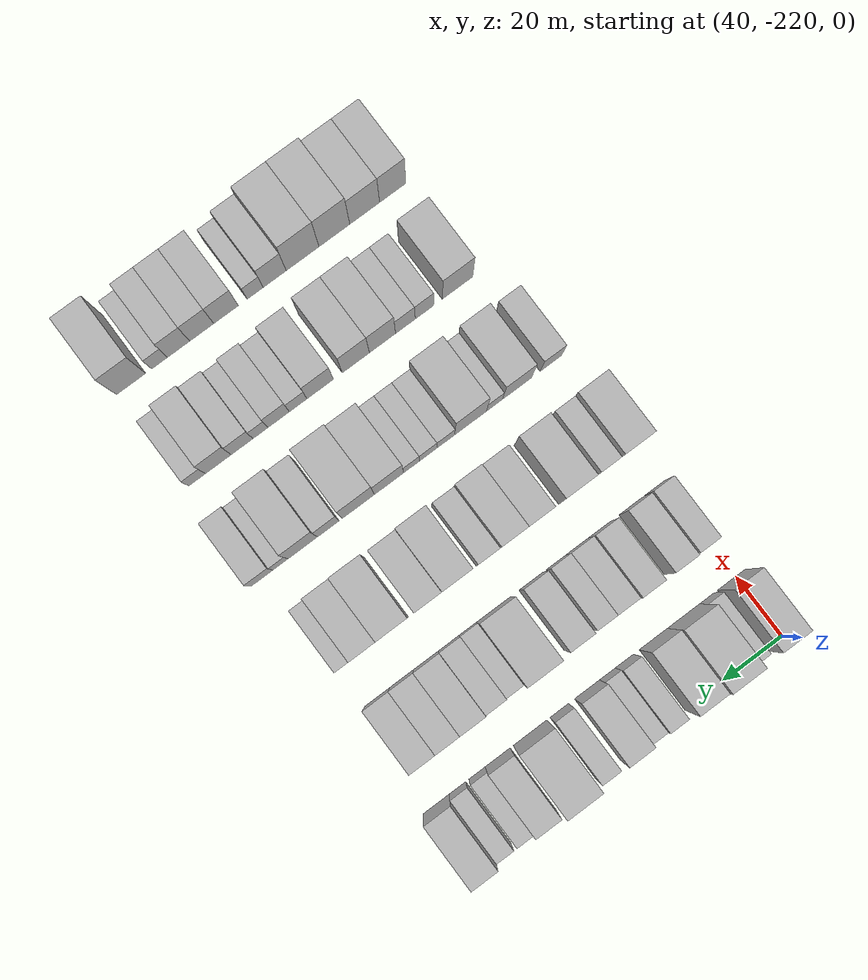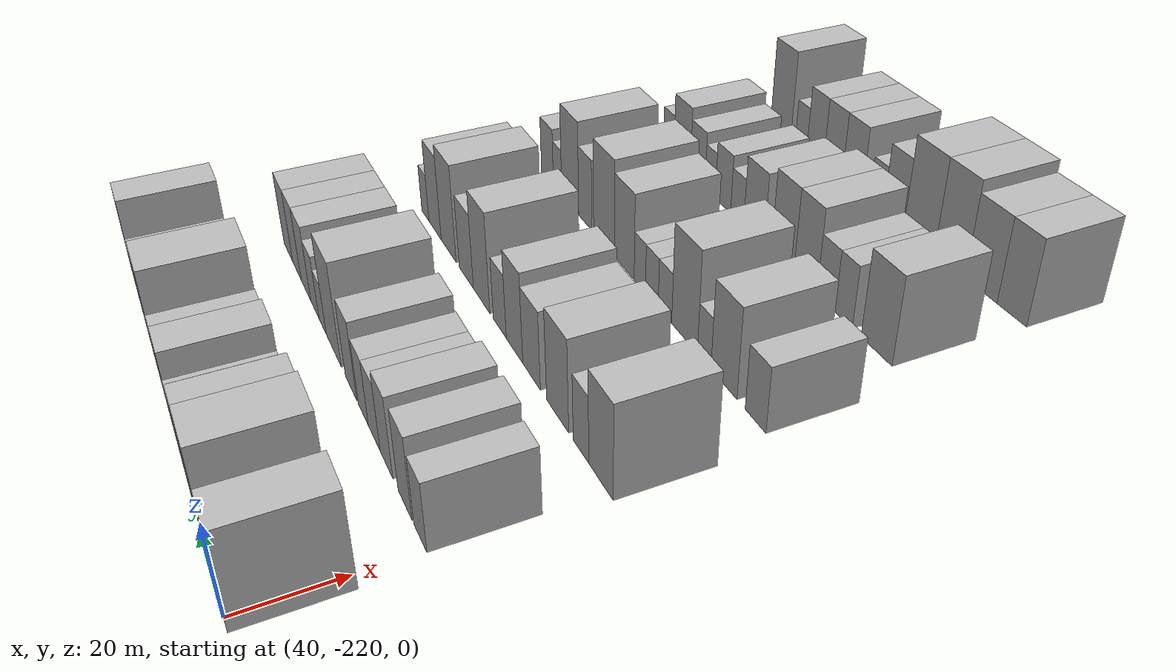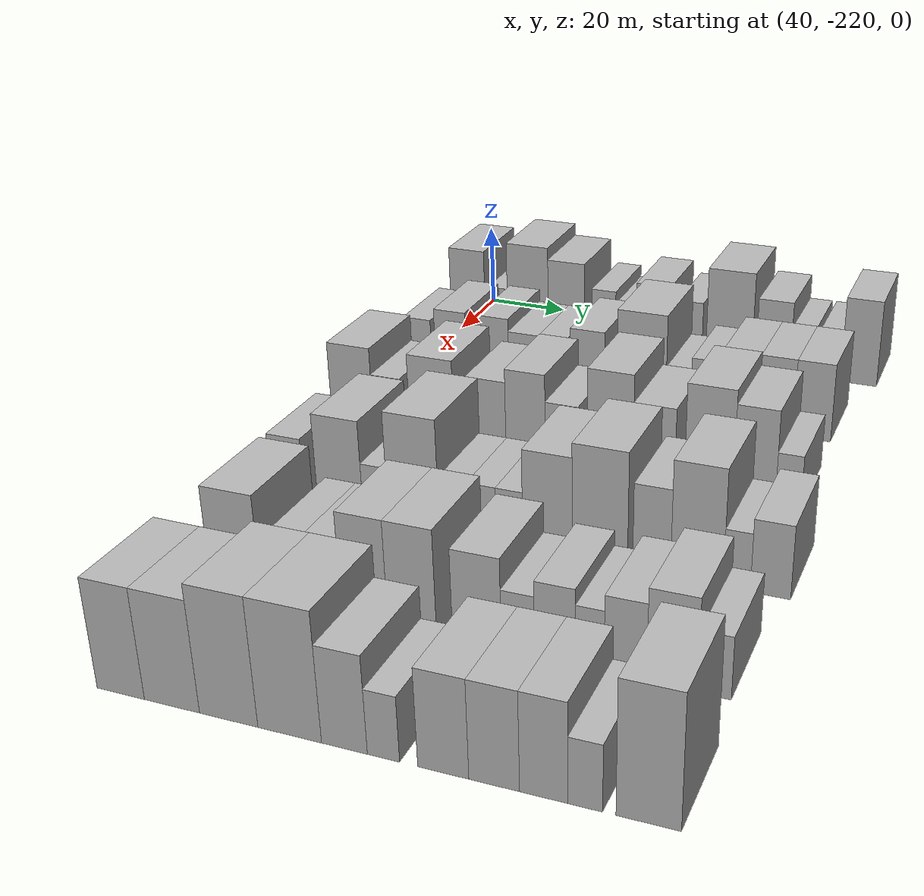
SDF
<sdf version="1.6">
 <world name="default">
  <model name="building_35">
   <static>1</static>
   <pose>50.0000 -218.4454 0 0.000000 0.000000 0.000000</pose>
   <link name="link">
    <pose>0 0 10.50 0 0 0</pose>
    <collision name="collision"><geometry><box><size>20.0000 9.4037 21.0000</size></box></geometry></collision>
    <visual name="visual">
     <cast_shadows>0</cast_shadows>
     <geometry><box><size>20.0000 9.4037 21.0000</size></box></geometry>
     <material>
      <script>
       <uri>model://HANNAS_wall/materials/scripts</uri>
       <uri>model://HANNAS_wall/materials/textures</uri>
       <name>vrc/HANNAS_wall</name>
      </script>
     </material>
    </visual>
   </link>
  </model>
  <model name="building_36">
   <static>1</static>
   <pose>50.0000 -210.1838 0 0.000000 0.000000 0.000000</pose>
   <link name="link">
    <pose>0 0 6.00 0 0 0</pose>
    <collision name="collision"><geometry><box><size>20.0000 5.1195 12.0000</size></box></geometry></collision>
    <visual name="visual">
     <cast_shadows>0</cast_shadows>
     <geometry><box><size>20.0000 5.1195 12.0000</size></box></geometry>
     <material>
      <script>
       <uri>model://HANNAS_wall/materials/scripts</uri>
       <uri>model://HANNAS_wall/materials/textures</uri>
       <name>vrc/HANNAS_wall</name>
      </script>
     </material>
    </visual>
   </link>
  </model>
  <model name="building_37">
   <static>1</static>
   <pose>50.0000 -202.1814 0 0.000000 0.000000 0.000000</pose>
   <link name="link">
    <pose>0 0 12.00 0 0 0</pose>
    <collision name="collision"><geometry><box><size>20.0000 10.8853 24.0000</size></box></geometry></collision>
    <visual name="visual">
     <cast_shadows>0</cast_shadows>
     <geometry><box><size>20.0000 10.8853 24.0000</size></box></geometry>
     <material>
      <script>
       <uri>model://HANNAS_wall/materials/scripts</uri>
       <uri>model://HANNAS_wall/materials/textures</uri>
       <name>vrc/HANNAS_wall</name>
      </script>
     </material>
    </visual>
   </link>
  </model>
  <model name="building_38">
   <static>1</static>
   <pose>50.0000 -191.9672 0 0.000000 0.000000 0.000000</pose>
   <link name="link">
    <pose>0 0 10.50 0 0 0</pose>
    <collision name="collision"><geometry><box><size>20.0000 9.5431 21.0000</size></box></geometry></collision>
    <visual name="visual">
     <cast_shadows>0</cast_shadows>
     <geometry><box><size>20.0000 9.5431 21.0000</size></box></geometry>
     <material>
      <script>
       <uri>model://HANNAS_wall/materials/scripts</uri>
       <uri>model://HANNAS_wall/materials/textures</uri>
       <name>vrc/HANNAS_wall</name>
      </script>
     </material>
    </visual>
   </link>
  </model>
  <model name="building_39">
   <static>1</static>
   <pose>50.0000 -182.1426 0 0.000000 0.000000 0.000000</pose>
   <link name="link">
    <pose>0 0 7.50 0 0 0</pose>
    <collision name="collision"><geometry><box><size>20.0000 6.1063 15.0000</size></box></geometry></collision>
    <visual name="visual">
     <cast_shadows>0</cast_shadows>
     <geometry><box><size>20.0000 6.1063 15.0000</size></box></geometry>
     <material>
      <script>
       <uri>model://HANNAS_wall/materials/scripts</uri>
       <uri>model://HANNAS_wall/materials/textures</uri>
       <name>vrc/HANNAS_wall</name>
      </script>
     </material>
    </visual>
   </link>
  </model>
  <model name="building_40">
   <static>1</static>
   <pose>50.0000 -176.4331 0 0.000000 0.000000 0.000000</pose>
   <link name="link">
    <pose>0 0 6.00 0 0 0</pose>
    <collision name="collision"><geometry><box><size>20.0000 5.3127 12.0000</size></box></geometry></collision>
    <visual name="visual">
     <cast_shadows>0</cast_shadows>
     <geometry><box><size>20.0000 5.3127 12.0000</size></box></geometry>
     <material>
      <script>
       <uri>model://HANNAS_wall/materials/scripts</uri>
       <uri>model://HANNAS_wall/materials/textures</uri>
       <name>vrc/HANNAS_wall</name>
      </script>
     </material>
    </visual>
   </link>
  </model>
  <model name="building_41">
   <static>1</static>
   <pose>50.0000 -169.5625 0 0.000000 0.000000 0.000000</pose>
   <link name="link">
    <pose>0 0 9.00 0 0 0</pose>
    <collision name="collision"><geometry><box><size>20.0000 8.4284 18.0000</size></box></geometry></collision>
    <visual name="visual">
     <cast_shadows>0</cast_shadows>
     <geometry><box><size>20.0000 8.4284 18.0000</size></box></geometry>
     <material>
      <script>
       <uri>model://HANNAS_wall/materials/scripts</uri>
       <uri>model://HANNAS_wall/materials/textures</uri>
       <name>vrc/HANNAS_wall</name>
      </script>
     </material>
    </visual>
   </link>
  </model>
  <model name="building_42">
   <static>1</static>
   <pose>50.0000 -160.2478 0 0.000000 0.000000 0.000000</pose>
   <link name="link">
    <pose>0 0 7.50 0 0 0</pose>
    <collision name="collision"><geometry><box><size>20.0000 6.2010 15.0000</size></box></geometry></collision>
    <visual name="visual">
     <cast_shadows>0</cast_shadows>
     <geometry><box><size>20.0000 6.2010 15.0000</size></box></geometry>
     <material>
      <script>
       <uri>model://HANNAS_wall/materials/scripts</uri>
       <uri>model://HANNAS_wall/materials/textures</uri>
       <name>vrc/HANNAS_wall</name>
      </script>
     </material>
    </visual>
   </link>
  </model>
  <model name="building_43">
   <static>1</static>
   <pose>50.0000 -150.4852 0 0.000000 0.000000 0.000000</pose>
   <link name="link">
    <pose>0 0 12.00 0 0 0</pose>
    <collision name="collision"><geometry><box><size>20.0000 11.3243 24.0000</size></box></geometry></collision>
    <visual name="visual">
     <cast_shadows>0</cast_shadows>
     <geometry><box><size>20.0000 11.3243 24.0000</size></box></geometry>
     <material>
      <script>
       <uri>model://HANNAS_wall/materials/scripts</uri>
       <uri>model://HANNAS_wall/materials/textures</uri>
       <name>vrc/HANNAS_wall</name>
      </script>
     </material>
    </visual>
   </link>
  </model>
  <model name="building_44">
   <static>1</static>
   <pose>50.0000 -139.6554 0 0.000000 0.000000 0.000000</pose>
   <link name="link">
    <pose>0 0 9.00 0 0 0</pose>
    <collision name="collision"><geometry><box><size>20.0000 8.3352 18.0000</size></box></geometry></collision>
    <visual name="visual">
     <cast_shadows>0</cast_shadows>
     <geometry><box><size>20.0000 8.3352 18.0000</size></box></geometry>
     <material>
      <script>
       <uri>model://HANNAS_wall/materials/scripts</uri>
       <uri>model://HANNAS_wall/materials/textures</uri>
       <name>vrc/HANNAS_wall</name>
      </script>
     </material>
    </visual>
   </link>
  </model>
  <model name="building_45">
   <static>1</static>
   <pose>50.0000 -132.7525 0 0.000000 0.000000 0.000000</pose>
   <link name="link">
    <pose>0 0 6.00 0 0 0</pose>
    <collision name="collision"><geometry><box><size>20.0000 5.4707 12.0000</size></box></geometry></collision>
    <visual name="visual">
     <cast_shadows>0</cast_shadows>
     <geometry><box><size>20.0000 5.4707 12.0000</size></box></geometry>
     <material>
      <script>
       <uri>model://HANNAS_wall/materials/scripts</uri>
       <uri>model://HANNAS_wall/materials/textures</uri>
       <name>vrc/HANNAS_wall</name>
      </script>
     </material>
    </visual>
   </link>
  </model>
  <model name="building_46">
   <static>1</static>
   <pose>50.0000 -126.2219 0 0.000000 0.000000 0.000000</pose>
   <link name="link">
    <pose>0 0 6.00 0 0 0</pose>
    <collision name="collision"><geometry><box><size>20.0000 5.5904 12.0000</size></box></geometry></collision>
    <visual name="visual">
     <cast_shadows>0</cast_shadows>
     <geometry><box><size>20.0000 5.5904 12.0000</size></box></geometry>
     <material>
      <script>
       <uri>model://HANNAS_wall/materials/scripts</uri>
       <uri>model://HANNAS_wall/materials/textures</uri>
       <name>vrc/HANNAS_wall</name>
      </script>
     </material>
    </visual>
   </link>
  </model>
  <model name="building_47">
   <static>1</static>
   <pose>50.0000 -119.1986 0 0.000000 0.000000 0.000000</pose>
   <link name="link">
    <pose>0 0 10.50 0 0 0</pose>
    <collision name="collision"><geometry><box><size>20.0000 8.4562 21.0000</size></box></geometry></collision>
    <visual name="visual">
     <cast_shadows>0</cast_shadows>
     <geometry><box><size>20.0000 8.4562 21.0000</size></box></geometry>
     <material>
      <script>
       <uri>model://HANNAS_wall/materials/scripts</uri>
       <uri>model://HANNAS_wall/materials/textures</uri>
       <name>vrc/HANNAS_wall</name>
      </script>
     </material>
    </visual>
   </link>
  </model>
  <model name="building_154">
   <static>1</static>
   <pose>82.0000 -217.0158 0 0.000000 0.000000 0.000000</pose>
   <link name="link">
    <pose>0 0 7.50 0 0 0</pose>
    <collision name="collision"><geometry><box><size>20.0000 6.8449 15.0000</size></box></geometry></collision>
    <visual name="visual">
     <cast_shadows>0</cast_shadows>
     <geometry><box><size>20.0000 6.8449 15.0000</size></box></geometry>
     <material>
      <script>
       <uri>model://HANNAS_wall/materials/scripts</uri>
       <uri>model://HANNAS_wall/materials/textures</uri>
       <name>vrc/HANNAS_wall</name>
      </script>
     </material>
    </visual>
   </link>
  </model>
  <model name="building_155">
   <static>1</static>
   <pose>82.0000 -208.7075 0 0.000000 0.000000 0.000000</pose>
   <link name="link">
    <pose>0 0 9.00 0 0 0</pose>
    <collision name="collision"><geometry><box><size>20.0000 7.7718 18.0000</size></box></geometry></collision>
    <visual name="visual">
     <cast_shadows>0</cast_shadows>
     <geometry><box><size>20.0000 7.7718 18.0000</size></box></geometry>
     <material>
      <script>
       <uri>model://HANNAS_wall/materials/scripts</uri>
       <uri>model://HANNAS_wall/materials/textures</uri>
       <name>vrc/HANNAS_wall</name>
      </script>
     </material>
    </visual>
   </link>
  </model>
  <model name="building_156">
   <static>1</static>
   <pose>82.0000 -198.0008 0 0.000000 0.000000 0.000000</pose>
   <link name="link">
    <pose>0 0 9.00 0 0 0</pose>
    <collision name="collision"><geometry><box><size>20.0000 7.6415 18.0000</size></box></geometry></collision>
    <visual name="visual">
     <cast_shadows>0</cast_shadows>
     <geometry><box><size>20.0000 7.6415 18.0000</size></box></geometry>
     <material>
      <script>
       <uri>model://HANNAS_wall/materials/scripts</uri>
       <uri>model://HANNAS_wall/materials/textures</uri>
       <name>vrc/HANNAS_wall</name>
      </script>
     </material>
    </visual>
   </link>
  </model>
  <model name="building_157">
   <static>1</static>
   <pose>82.0000 -190.4567 0 0.000000 0.000000 0.000000</pose>
   <link name="link">
    <pose>0 0 7.50 0 0 0</pose>
    <collision name="collision"><geometry><box><size>20.0000 7.4467 15.0000</size></box></geometry></collision>
    <visual name="visual">
     <cast_shadows>0</cast_shadows>
     <geometry><box><size>20.0000 7.4467 15.0000</size></box></geometry>
     <material>
      <script>
       <uri>model://HANNAS_wall/materials/scripts</uri>
       <uri>model://HANNAS_wall/materials/textures</uri>
       <name>vrc/HANNAS_wall</name>
      </script>
     </material>
    </visual>
   </link>
  </model>
  <model name="building_158">
   <static>1</static>
   <pose>82.0000 -183.4003 0 0.000000 0.000000 0.000000</pose>
   <link name="link">
    <pose>0 0 7.50 0 0 0</pose>
    <collision name="collision"><geometry><box><size>20.0000 6.6661 15.0000</size></box></geometry></collision>
    <visual name="visual">
     <cast_shadows>0</cast_shadows>
     <geometry><box><size>20.0000 6.6661 15.0000</size></box></geometry>
     <material>
      <script>
       <uri>model://HANNAS_wall/materials/scripts</uri>
       <uri>model://HANNAS_wall/materials/textures</uri>
       <name>vrc/HANNAS_wall</name>
      </script>
     </material>
    </visual>
   </link>
  </model>
  <model name="building_159">
   <static>1</static>
   <pose>82.0000 -175.0120 0 0.000000 0.000000 0.000000</pose>
   <link name="link">
    <pose>0 0 9.00 0 0 0</pose>
    <collision name="collision"><geometry><box><size>20.0000 8.1106 18.0000</size></box></geometry></collision>
    <visual name="visual">
     <cast_shadows>0</cast_shadows>
     <geometry><box><size>20.0000 8.1106 18.0000</size></box></geometry>
     <material>
      <script>
       <uri>model://HANNAS_wall/materials/scripts</uri>
       <uri>model://HANNAS_wall/materials/textures</uri>
       <name>vrc/HANNAS_wall</name>
      </script>
     </material>
    </visual>
   </link>
  </model>
  <model name="building_160">
   <static>1</static>
   <pose>82.0000 -162.2628 0 0.000000 0.000000 0.000000</pose>
   <link name="link">
    <pose>0 0 12.00 0 0 0</pose>
    <collision name="collision"><geometry><box><size>20.0000 11.3878 24.0000</size></box></geometry></collision>
    <visual name="visual">
     <cast_shadows>0</cast_shadows>
     <geometry><box><size>20.0000 11.3878 24.0000</size></box></geometry>
     <material>
      <script>
       <uri>model://HANNAS_wall/materials/scripts</uri>
       <uri>model://HANNAS_wall/materials/textures</uri>
       <name>vrc/HANNAS_wall</name>
      </script>
     </material>
    </visual>
   </link>
  </model>
  <model name="building_161">
   <static>1</static>
   <pose>82.0000 -153.6746 0 0.000000 0.000000 0.000000</pose>
   <link name="link">
    <pose>0 0 6.00 0 0 0</pose>
    <collision name="collision"><geometry><box><size>20.0000 5.7885 12.0000</size></box></geometry></collision>
    <visual name="visual">
     <cast_shadows>0</cast_shadows>
     <geometry><box><size>20.0000 5.7885 12.0000</size></box></geometry>
     <material>
      <script>
       <uri>model://HANNAS_wall/materials/scripts</uri>
       <uri>model://HANNAS_wall/materials/textures</uri>
       <name>vrc/HANNAS_wall</name>
      </script>
     </material>
    </visual>
   </link>
  </model>
  <model name="building_162">
   <static>1</static>
   <pose>82.0000 -147.3491 0 0.000000 0.000000 0.000000</pose>
   <link name="link">
    <pose>0 0 7.50 0 0 0</pose>
    <collision name="collision"><geometry><box><size>20.0000 6.8624 15.0000</size></box></geometry></collision>
    <visual name="visual">
     <cast_shadows>0</cast_shadows>
     <geometry><box><size>20.0000 6.8624 15.0000</size></box></geometry>
     <material>
      <script>
       <uri>model://HANNAS_wall/materials/scripts</uri>
       <uri>model://HANNAS_wall/materials/textures</uri>
       <name>vrc/HANNAS_wall</name>
      </script>
     </material>
    </visual>
   </link>
  </model>
  <model name="building_163">
   <static>1</static>
   <pose>82.0000 -139.7272 0 0.000000 0.000000 0.000000</pose>
   <link name="link">
    <pose>0 0 9.00 0 0 0</pose>
    <collision name="collision"><geometry><box><size>20.0000 8.3814 18.0000</size></box></geometry></collision>
    <visual name="visual">
     <cast_shadows>0</cast_shadows>
     <geometry><box><size>20.0000 8.3814 18.0000</size></box></geometry>
     <material>
      <script>
       <uri>model://HANNAS_wall/materials/scripts</uri>
       <uri>model://HANNAS_wall/materials/textures</uri>
       <name>vrc/HANNAS_wall</name>
      </script>
     </material>
    </visual>
   </link>
  </model>
  <model name="building_164">
   <static>1</static>
   <pose>82.0000 -131.6029 0 0.000000 0.000000 0.000000</pose>
   <link name="link">
    <pose>0 0 9.00 0 0 0</pose>
    <collision name="collision"><geometry><box><size>20.0000 7.8673 18.0000</size></box></geometry></collision>
    <visual name="visual">
     <cast_shadows>0</cast_shadows>
     <geometry><box><size>20.0000 7.8673 18.0000</size></box></geometry>
     <material>
      <script>
       <uri>model://HANNAS_wall/materials/scripts</uri>
       <uri>model://HANNAS_wall/materials/textures</uri>
       <name>vrc/HANNAS_wall</name>
      </script>
     </material>
    </visual>
   </link>
  </model>
  <model name="building_165">
   <static>1</static>
   <pose>82.0000 -123.5422 0 0.000000 0.000000 0.000000</pose>
   <link name="link">
    <pose>0 0 9.00 0 0 0</pose>
    <collision name="collision"><geometry><box><size>20.0000 8.2540 18.0000</size></box></geometry></collision>
    <visual name="visual">
     <cast_shadows>0</cast_shadows>
     <geometry><box><size>20.0000 8.2540 18.0000</size></box></geometry>
     <material>
      <script>
       <uri>model://HANNAS_wall/materials/scripts</uri>
       <uri>model://HANNAS_wall/materials/textures</uri>
       <name>vrc/HANNAS_wall</name>
      </script>
     </material>
    </visual>
   </link>
  </model>
  <model name="building_278">
   <static>1</static>
   <pose>114.0000 -217.5228 0 0.000000 0.000000 0.000000</pose>
   <link name="link">
    <pose>0 0 10.50 0 0 0</pose>
    <collision name="collision"><geometry><box><size>20.0000 9.9936 21.0000</size></box></geometry></collision>
    <visual name="visual">
     <cast_shadows>0</cast_shadows>
     <geometry><box><size>20.0000 9.9936 21.0000</size></box></geometry>
     <material>
      <script>
       <uri>model://HANNAS_wall/materials/scripts</uri>
       <uri>model://HANNAS_wall/materials/textures</uri>
       <name>vrc/HANNAS_wall</name>
      </script>
     </material>
    </visual>
   </link>
  </model>
  <model name="building_279">
   <static>1</static>
   <pose>114.0000 -209.1601 0 0.000000 0.000000 0.000000</pose>
   <link name="link">
    <pose>0 0 7.50 0 0 0</pose>
    <collision name="collision"><geometry><box><size>20.0000 6.7319 15.0000</size></box></geometry></collision>
    <visual name="visual">
     <cast_shadows>0</cast_shadows>
     <geometry><box><size>20.0000 6.7319 15.0000</size></box></geometry>
     <material>
      <script>
       <uri>model://HANNAS_wall/materials/scripts</uri>
       <uri>model://HANNAS_wall/materials/textures</uri>
       <name>vrc/HANNAS_wall</name>
      </script>
     </material>
    </visual>
   </link>
  </model>
  <model name="building_280">
   <static>1</static>
   <pose>114.0000 -198.6608 0 0.000000 0.000000 0.000000</pose>
   <link name="link">
    <pose>0 0 10.50 0 0 0</pose>
    <collision name="collision"><geometry><box><size>20.0000 10.2668 21.0000</size></box></geometry></collision>
    <visual name="visual">
     <cast_shadows>0</cast_shadows>
     <geometry><box><size>20.0000 10.2668 21.0000</size></box></geometry>
     <material>
      <script>
       <uri>model://HANNAS_wall/materials/scripts</uri>
       <uri>model://HANNAS_wall/materials/textures</uri>
       <name>vrc/HANNAS_wall</name>
      </script>
     </material>
    </visual>
   </link>
  </model>
  <model name="building_281">
   <static>1</static>
   <pose>114.0000 -186.0950 0 0.000000 0.000000 0.000000</pose>
   <link name="link">
    <pose>0 0 9.00 0 0 0</pose>
    <collision name="collision"><geometry><box><size>20.0000 8.8647 18.0000</size></box></geometry></collision>
    <visual name="visual">
     <cast_shadows>0</cast_shadows>
     <geometry><box><size>20.0000 8.8647 18.0000</size></box></geometry>
     <material>
      <script>
       <uri>model://HANNAS_wall/materials/scripts</uri>
       <uri>model://HANNAS_wall/materials/textures</uri>
       <name>vrc/HANNAS_wall</name>
      </script>
     </material>
    </visual>
   </link>
  </model>
  <model name="building_282">
   <static>1</static>
   <pose>114.0000 -177.2658 0 0.000000 0.000000 0.000000</pose>
   <link name="link">
    <pose>0 0 10.50 0 0 0</pose>
    <collision name="collision"><geometry><box><size>20.0000 8.7937 21.0000</size></box></geometry></collision>
    <visual name="visual">
     <cast_shadows>0</cast_shadows>
     <geometry><box><size>20.0000 8.7937 21.0000</size></box></geometry>
     <material>
      <script>
       <uri>model://HANNAS_wall/materials/scripts</uri>
       <uri>model://HANNAS_wall/materials/textures</uri>
       <name>vrc/HANNAS_wall</name>
      </script>
     </material>
    </visual>
   </link>
  </model>
  <model name="building_283">
   <static>1</static>
   <pose>114.0000 -169.2636 0 0.000000 0.000000 0.000000</pose>
   <link name="link">
    <pose>0 0 7.50 0 0 0</pose>
    <collision name="collision"><geometry><box><size>20.0000 7.2105 15.0000</size></box></geometry></collision>
    <visual name="visual">
     <cast_shadows>0</cast_shadows>
     <geometry><box><size>20.0000 7.2105 15.0000</size></box></geometry>
     <material>
      <script>
       <uri>model://HANNAS_wall/materials/scripts</uri>
       <uri>model://HANNAS_wall/materials/textures</uri>
       <name>vrc/HANNAS_wall</name>
      </script>
     </material>
    </visual>
   </link>
  </model>
  <model name="building_284">
   <static>1</static>
   <pose>114.0000 -158.7313 0 0.000000 0.000000 0.000000</pose>
   <link name="link">
    <pose>0 0 12.00 0 0 0</pose>
    <collision name="collision"><geometry><box><size>20.0000 9.8542 24.0000</size></box></geometry></collision>
    <visual name="visual">
     <cast_shadows>0</cast_shadows>
     <geometry><box><size>20.0000 9.8542 24.0000</size></box></geometry>
     <material>
      <script>
       <uri>model://HANNAS_wall/materials/scripts</uri>
       <uri>model://HANNAS_wall/materials/textures</uri>
       <name>vrc/HANNAS_wall</name>
      </script>
     </material>
    </visual>
   </link>
  </model>
  <model name="building_285">
   <static>1</static>
   <pose>114.0000 -149.3580 0 0.000000 0.000000 0.000000</pose>
   <link name="link">
    <pose>0 0 9.00 0 0 0</pose>
    <collision name="collision"><geometry><box><size>20.0000 8.8923 18.0000</size></box></geometry></collision>
    <visual name="visual">
     <cast_shadows>0</cast_shadows>
     <geometry><box><size>20.0000 8.8923 18.0000</size></box></geometry>
     <material>
      <script>
       <uri>model://HANNAS_wall/materials/scripts</uri>
       <uri>model://HANNAS_wall/materials/textures</uri>
       <name>vrc/HANNAS_wall</name>
      </script>
     </material>
    </visual>
   </link>
  </model>
  <model name="building_286">
   <static>1</static>
   <pose>114.0000 -137.8700 0 0.000000 0.000000 0.000000</pose>
   <link name="link">
    <pose>0 0 12.00 0 0 0</pose>
    <collision name="collision"><geometry><box><size>20.0000 10.0838 24.0000</size></box></geometry></collision>
    <visual name="visual">
     <cast_shadows>0</cast_shadows>
     <geometry><box><size>20.0000 10.0838 24.0000</size></box></geometry>
     <material>
      <script>
       <uri>model://HANNAS_wall/materials/scripts</uri>
       <uri>model://HANNAS_wall/materials/textures</uri>
       <name>vrc/HANNAS_wall</name>
      </script>
     </material>
    </visual>
   </link>
  </model>
  <model name="building_287">
   <static>1</static>
   <pose>114.0000 -128.5149 0 0.000000 0.000000 0.000000</pose>
   <link name="link">
    <pose>0 0 10.50 0 0 0</pose>
    <collision name="collision"><geometry><box><size>20.0000 8.6265 21.0000</size></box></geometry></collision>
    <visual name="visual">
     <cast_shadows>0</cast_shadows>
     <geometry><box><size>20.0000 8.6265 21.0000</size></box></geometry>
     <material>
      <script>
       <uri>model://HANNAS_wall/materials/scripts</uri>
       <uri>model://HANNAS_wall/materials/textures</uri>
       <name>vrc/HANNAS_wall</name>
      </script>
     </material>
    </visual>
   </link>
  </model>
  <model name="building_288">
   <static>1</static>
   <pose>114.0000 -121.6072 0 0.000000 0.000000 0.000000</pose>
   <link name="link">
    <pose>0 0 6.00 0 0 0</pose>
    <collision name="collision"><geometry><box><size>20.0000 5.1888 12.0000</size></box></geometry></collision>
    <visual name="visual">
     <cast_shadows>0</cast_shadows>
     <geometry><box><size>20.0000 5.1888 12.0000</size></box></geometry>
     <material>
      <script>
       <uri>model://HANNAS_wall/materials/scripts</uri>
       <uri>model://HANNAS_wall/materials/textures</uri>
       <name>vrc/HANNAS_wall</name>
      </script>
     </material>
    </visual>
   </link>
  </model>
  <model name="building_401">
   <static>1</static>
   <pose>146.0000 -215.1576 0 0.000000 0.000000 0.000000</pose>
   <link name="link">
    <pose>0 0 7.50 0 0 0</pose>
    <collision name="collision"><geometry><box><size>20.0000 7.3427 15.0000</size></box></geometry></collision>
    <visual name="visual">
     <cast_shadows>0</cast_shadows>
     <geometry><box><size>20.0000 7.3427 15.0000</size></box></geometry>
     <material>
      <script>
       <uri>model://HANNAS_wall/materials/scripts</uri>
       <uri>model://HANNAS_wall/materials/textures</uri>
       <name>vrc/HANNAS_wall</name>
      </script>
     </material>
    </visual>
   </link>
  </model>
  <model name="building_402">
   <static>1</static>
   <pose>146.0000 -203.5172 0 0.000000 0.000000 0.000000</pose>
   <link name="link">
    <pose>0 0 10.50 0 0 0</pose>
    <collision name="collision"><geometry><box><size>20.0000 9.9380 21.0000</size></box></geometry></collision>
    <visual name="visual">
     <cast_shadows>0</cast_shadows>
     <geometry><box><size>20.0000 9.9380 21.0000</size></box></geometry>
     <material>
      <script>
       <uri>model://HANNAS_wall/materials/scripts</uri>
       <uri>model://HANNAS_wall/materials/textures</uri>
       <name>vrc/HANNAS_wall</name>
      </script>
     </material>
    </visual>
   </link>
  </model>
  <model name="building_403">
   <static>1</static>
   <pose>146.0000 -195.8429 0 0.000000 0.000000 0.000000</pose>
   <link name="link">
    <pose>0 0 6.00 0 0 0</pose>
    <collision name="collision"><geometry><box><size>20.0000 5.4107 12.0000</size></box></geometry></collision>
    <visual name="visual">
     <cast_shadows>0</cast_shadows>
     <geometry><box><size>20.0000 5.4107 12.0000</size></box></geometry>
     <material>
      <script>
       <uri>model://HANNAS_wall/materials/scripts</uri>
       <uri>model://HANNAS_wall/materials/textures</uri>
       <name>vrc/HANNAS_wall</name>
      </script>
     </material>
    </visual>
   </link>
  </model>
  <model name="building_404">
   <static>1</static>
   <pose>146.0000 -187.7205 0 0.000000 0.000000 0.000000</pose>
   <link name="link">
    <pose>0 0 12.00 0 0 0</pose>
    <collision name="collision"><geometry><box><size>20.0000 10.8342 24.0000</size></box></geometry></collision>
    <visual name="visual">
     <cast_shadows>0</cast_shadows>
     <geometry><box><size>20.0000 10.8342 24.0000</size></box></geometry>
     <material>
      <script>
       <uri>model://HANNAS_wall/materials/scripts</uri>
       <uri>model://HANNAS_wall/materials/textures</uri>
       <name>vrc/HANNAS_wall</name>
      </script>
     </material>
    </visual>
   </link>
  </model>
  <model name="building_405">
   <static>1</static>
   <pose>146.0000 -179.3036 0 0.000000 0.000000 0.000000</pose>
   <link name="link">
    <pose>0 0 6.00 0 0 0</pose>
    <collision name="collision"><geometry><box><size>20.0000 5.9994 12.0000</size></box></geometry></collision>
    <visual name="visual">
     <cast_shadows>0</cast_shadows>
     <geometry><box><size>20.0000 5.9994 12.0000</size></box></geometry>
     <material>
      <script>
       <uri>model://HANNAS_wall/materials/scripts</uri>
       <uri>model://HANNAS_wall/materials/textures</uri>
       <name>vrc/HANNAS_wall</name>
      </script>
     </material>
    </visual>
   </link>
  </model>
  <model name="building_406">
   <static>1</static>
   <pose>146.0000 -173.3796 0 0.000000 0.000000 0.000000</pose>
   <link name="link">
    <pose>0 0 6.00 0 0 0</pose>
    <collision name="collision"><geometry><box><size>20.0000 5.8488 12.0000</size></box></geometry></collision>
    <visual name="visual">
     <cast_shadows>0</cast_shadows>
     <geometry><box><size>20.0000 5.8488 12.0000</size></box></geometry>
     <material>
      <script>
       <uri>model://HANNAS_wall/materials/scripts</uri>
       <uri>model://HANNAS_wall/materials/textures</uri>
       <name>vrc/HANNAS_wall</name>
      </script>
     </material>
    </visual>
   </link>
  </model>
  <model name="building_407">
   <static>1</static>
   <pose>146.0000 -167.7622 0 0.000000 0.000000 0.000000</pose>
   <link name="link">
    <pose>0 0 6.00 0 0 0</pose>
    <collision name="collision"><geometry><box><size>20.0000 5.3860 12.0000</size></box></geometry></collision>
    <visual name="visual">
     <cast_shadows>0</cast_shadows>
     <geometry><box><size>20.0000 5.3860 12.0000</size></box></geometry>
     <material>
      <script>
       <uri>model://HANNAS_wall/materials/scripts</uri>
       <uri>model://HANNAS_wall/materials/textures</uri>
       <name>vrc/HANNAS_wall</name>
      </script>
     </material>
    </visual>
   </link>
  </model>
  <model name="building_408">
   <static>1</static>
   <pose>146.0000 -160.1536 0 0.000000 0.000000 0.000000</pose>
   <link name="link">
    <pose>0 0 10.50 0 0 0</pose>
    <collision name="collision"><geometry><box><size>20.0000 9.8311 21.0000</size></box></geometry></collision>
    <visual name="visual">
     <cast_shadows>0</cast_shadows>
     <geometry><box><size>20.0000 9.8311 21.0000</size></box></geometry>
     <material>
      <script>
       <uri>model://HANNAS_wall/materials/scripts</uri>
       <uri>model://HANNAS_wall/materials/textures</uri>
       <name>vrc/HANNAS_wall</name>
      </script>
     </material>
    </visual>
   </link>
  </model>
  <model name="building_409">
   <static>1</static>
   <pose>146.0000 -149.8224 0 0.000000 0.000000 0.000000</pose>
   <link name="link">
    <pose>0 0 12.00 0 0 0</pose>
    <collision name="collision"><geometry><box><size>20.0000 10.8313 24.0000</size></box></geometry></collision>
    <visual name="visual">
     <cast_shadows>0</cast_shadows>
     <geometry><box><size>20.0000 10.8313 24.0000</size></box></geometry>
     <material>
      <script>
       <uri>model://HANNAS_wall/materials/scripts</uri>
       <uri>model://HANNAS_wall/materials/textures</uri>
       <name>vrc/HANNAS_wall</name>
      </script>
     </material>
    </visual>
   </link>
  </model>
  <model name="building_410">
   <static>1</static>
   <pose>146.0000 -139.7927 0 0.000000 0.000000 0.000000</pose>
   <link name="link">
    <pose>0 0 9.00 0 0 0</pose>
    <collision name="collision"><geometry><box><size>20.0000 7.2281 18.0000</size></box></geometry></collision>
    <visual name="visual">
     <cast_shadows>0</cast_shadows>
     <geometry><box><size>20.0000 7.2281 18.0000</size></box></geometry>
     <material>
      <script>
       <uri>model://HANNAS_wall/materials/scripts</uri>
       <uri>model://HANNAS_wall/materials/textures</uri>
       <name>vrc/HANNAS_wall</name>
      </script>
     </material>
    </visual>
   </link>
  </model>
  <model name="building_411">
   <static>1</static>
   <pose>146.0000 -131.2343 0 0.000000 0.000000 0.000000</pose>
   <link name="link">
    <pose>0 0 12.00 0 0 0</pose>
    <collision name="collision"><geometry><box><size>20.0000 9.8887 24.0000</size></box></geometry></collision>
    <visual name="visual">
     <cast_shadows>0</cast_shadows>
     <geometry><box><size>20.0000 9.8887 24.0000</size></box></geometry>
     <material>
      <script>
       <uri>model://HANNAS_wall/materials/scripts</uri>
       <uri>model://HANNAS_wall/materials/textures</uri>
       <name>vrc/HANNAS_wall</name>
      </script>
     </material>
    </visual>
   </link>
  </model>
  <model name="building_412">
   <static>1</static>
   <pose>146.0000 -123.7840 0 0.000000 0.000000 0.000000</pose>
   <link name="link">
    <pose>0 0 6.00 0 0 0</pose>
    <collision name="collision"><geometry><box><size>20.0000 5.0118 12.0000</size></box></geometry></collision>
    <visual name="visual">
     <cast_shadows>0</cast_shadows>
     <geometry><box><size>20.0000 5.0118 12.0000</size></box></geometry>
     <material>
      <script>
       <uri>model://HANNAS_wall/materials/scripts</uri>
       <uri>model://HANNAS_wall/materials/textures</uri>
       <name>vrc/HANNAS_wall</name>
      </script>
     </material>
    </visual>
   </link>
  </model>
  <model name="building_413">
   <static>1</static>
   <pose>146.0000 -117.5967 0 0.000000 0.000000 0.000000</pose>
   <link name="link">
    <pose>0 0 7.50 0 0 0</pose>
    <collision name="collision"><geometry><box><size>20.0000 7.3629 15.0000</size></box></geometry></collision>
    <visual name="visual">
     <cast_shadows>0</cast_shadows>
     <geometry><box><size>20.0000 7.3629 15.0000</size></box></geometry>
     <material>
      <script>
       <uri>model://HANNAS_wall/materials/scripts</uri>
       <uri>model://HANNAS_wall/materials/textures</uri>
       <name>vrc/HANNAS_wall</name>
      </script>
     </material>
    </visual>
   </link>
  </model>
  <model name="building_520">
   <static>1</static>
   <pose>178.0000 -207.3271 0 0.000000 0.000000 0.000000</pose>
   <link name="link">
    <pose>0 0 10.50 0 0 0</pose>
    <collision name="collision"><geometry><box><size>20.0000 10.3801 21.0000</size></box></geometry></collision>
    <visual name="visual">
     <cast_shadows>0</cast_shadows>
     <geometry><box><size>20.0000 10.3801 21.0000</size></box></geometry>
     <material>
      <script>
       <uri>model://HANNAS_wall/materials/scripts</uri>
       <uri>model://HANNAS_wall/materials/textures</uri>
       <name>vrc/HANNAS_wall</name>
      </script>
     </material>
    </visual>
   </link>
  </model>
  <model name="building_521">
   <static>1</static>
   <pose>178.0000 -196.0104 0 0.000000 0.000000 0.000000</pose>
   <link name="link">
    <pose>0 0 7.50 0 0 0</pose>
    <collision name="collision"><geometry><box><size>20.0000 6.2533 15.0000</size></box></geometry></collision>
    <visual name="visual">
     <cast_shadows>0</cast_shadows>
     <geometry><box><size>20.0000 6.2533 15.0000</size></box></geometry>
     <material>
      <script>
       <uri>model://HANNAS_wall/materials/scripts</uri>
       <uri>model://HANNAS_wall/materials/textures</uri>
       <name>vrc/HANNAS_wall</name>
      </script>
     </material>
    </visual>
   </link>
  </model>
  <model name="building_522">
   <static>1</static>
   <pose>178.0000 -189.5271 0 0.000000 0.000000 0.000000</pose>
   <link name="link">
    <pose>0 0 7.50 0 0 0</pose>
    <collision name="collision"><geometry><box><size>20.0000 6.7133 15.0000</size></box></geometry></collision>
    <visual name="visual">
     <cast_shadows>0</cast_shadows>
     <geometry><box><size>20.0000 6.7133 15.0000</size></box></geometry>
     <material>
      <script>
       <uri>model://HANNAS_wall/materials/scripts</uri>
       <uri>model://HANNAS_wall/materials/textures</uri>
       <name>vrc/HANNAS_wall</name>
      </script>
     </material>
    </visual>
   </link>
  </model>
  <model name="building_523">
   <static>1</static>
   <pose>178.0000 -181.7215 0 0.000000 0.000000 0.000000</pose>
   <link name="link">
    <pose>0 0 10.50 0 0 0</pose>
    <collision name="collision"><geometry><box><size>20.0000 8.8979 21.0000</size></box></geometry></collision>
    <visual name="visual">
     <cast_shadows>0</cast_shadows>
     <geometry><box><size>20.0000 8.8979 21.0000</size></box></geometry>
     <material>
      <script>
       <uri>model://HANNAS_wall/materials/scripts</uri>
       <uri>model://HANNAS_wall/materials/textures</uri>
       <name>vrc/HANNAS_wall</name>
      </script>
     </material>
    </visual>
   </link>
  </model>
  <model name="building_524">
   <static>1</static>
   <pose>178.0000 -172.6784 0 0.000000 0.000000 0.000000</pose>
   <link name="link">
    <pose>0 0 10.50 0 0 0</pose>
    <collision name="collision"><geometry><box><size>20.0000 9.1884 21.0000</size></box></geometry></collision>
    <visual name="visual">
     <cast_shadows>0</cast_shadows>
     <geometry><box><size>20.0000 9.1884 21.0000</size></box></geometry>
     <material>
      <script>
       <uri>model://HANNAS_wall/materials/scripts</uri>
       <uri>model://HANNAS_wall/materials/textures</uri>
       <name>vrc/HANNAS_wall</name>
      </script>
     </material>
    </visual>
   </link>
  </model>
  <model name="building_525">
   <static>1</static>
   <pose>178.0000 -160.5990 0 0.000000 0.000000 0.000000</pose>
   <link name="link">
    <pose>0 0 9.00 0 0 0</pose>
    <collision name="collision"><geometry><box><size>20.0000 8.9704 18.0000</size></box></geometry></collision>
    <visual name="visual">
     <cast_shadows>0</cast_shadows>
     <geometry><box><size>20.0000 8.9704 18.0000</size></box></geometry>
     <material>
      <script>
       <uri>model://HANNAS_wall/materials/scripts</uri>
       <uri>model://HANNAS_wall/materials/textures</uri>
       <name>vrc/HANNAS_wall</name>
      </script>
     </material>
    </visual>
   </link>
  </model>
  <model name="building_526">
   <static>1</static>
   <pose>178.0000 -153.1447 0 0.000000 0.000000 0.000000</pose>
   <link name="link">
    <pose>0 0 6.00 0 0 0</pose>
    <collision name="collision"><geometry><box><size>20.0000 5.9383 12.0000</size></box></geometry></collision>
    <visual name="visual">
     <cast_shadows>0</cast_shadows>
     <geometry><box><size>20.0000 5.9383 12.0000</size></box></geometry>
     <material>
      <script>
       <uri>model://HANNAS_wall/materials/scripts</uri>
       <uri>model://HANNAS_wall/materials/textures</uri>
       <name>vrc/HANNAS_wall</name>
      </script>
     </material>
    </visual>
   </link>
  </model>
  <model name="building_527">
   <static>1</static>
   <pose>178.0000 -146.5547 0 0.000000 0.000000 0.000000</pose>
   <link name="link">
    <pose>0 0 7.50 0 0 0</pose>
    <collision name="collision"><geometry><box><size>20.0000 7.2417 15.0000</size></box></geometry></collision>
    <visual name="visual">
     <cast_shadows>0</cast_shadows>
     <geometry><box><size>20.0000 7.2417 15.0000</size></box></geometry>
     <material>
      <script>
       <uri>model://HANNAS_wall/materials/scripts</uri>
       <uri>model://HANNAS_wall/materials/textures</uri>
       <name>vrc/HANNAS_wall</name>
      </script>
     </material>
    </visual>
   </link>
  </model>
  <model name="building_528">
   <static>1</static>
   <pose>178.0000 -140.4254 0 0.000000 0.000000 0.000000</pose>
   <link name="link">
    <pose>0 0 6.00 0 0 0</pose>
    <collision name="collision"><geometry><box><size>20.0000 5.0169 12.0000</size></box></geometry></collision>
    <visual name="visual">
     <cast_shadows>0</cast_shadows>
     <geometry><box><size>20.0000 5.0169 12.0000</size></box></geometry>
     <material>
      <script>
       <uri>model://HANNAS_wall/materials/scripts</uri>
       <uri>model://HANNAS_wall/materials/textures</uri>
       <name>vrc/HANNAS_wall</name>
      </script>
     </material>
    </visual>
   </link>
  </model>
  <model name="building_529">
   <static>1</static>
   <pose>178.0000 -134.2555 0 0.000000 0.000000 0.000000</pose>
   <link name="link">
    <pose>0 0 7.50 0 0 0</pose>
    <collision name="collision"><geometry><box><size>20.0000 7.3230 15.0000</size></box></geometry></collision>
    <visual name="visual">
     <cast_shadows>0</cast_shadows>
     <geometry><box><size>20.0000 7.3230 15.0000</size></box></geometry>
     <material>
      <script>
       <uri>model://HANNAS_wall/materials/scripts</uri>
       <uri>model://HANNAS_wall/materials/textures</uri>
       <name>vrc/HANNAS_wall</name>
      </script>
     </material>
    </visual>
   </link>
  </model>
  <model name="building_530">
   <static>1</static>
   <pose>178.0000 -126.2951 0 0.000000 0.000000 0.000000</pose>
   <link name="link">
    <pose>0 0 9.00 0 0 0</pose>
    <collision name="collision"><geometry><box><size>20.0000 8.5978 18.0000</size></box></geometry></collision>
    <visual name="visual">
     <cast_shadows>0</cast_shadows>
     <geometry><box><size>20.0000 8.5978 18.0000</size></box></geometry>
     <material>
      <script>
       <uri>model://HANNAS_wall/materials/scripts</uri>
       <uri>model://HANNAS_wall/materials/textures</uri>
       <name>vrc/HANNAS_wall</name>
      </script>
     </material>
    </visual>
   </link>
  </model>
  <model name="building_531">
   <static>1</static>
   <pose>178.0000 -119.2111 0 0.000000 0.000000 0.000000</pose>
   <link name="link">
    <pose>0 0 6.00 0 0 0</pose>
    <collision name="collision"><geometry><box><size>20.0000 5.5703 12.0000</size></box></geometry></collision>
    <visual name="visual">
     <cast_shadows>0</cast_shadows>
     <geometry><box><size>20.0000 5.5703 12.0000</size></box></geometry>
     <material>
      <script>
       <uri>model://HANNAS_wall/materials/scripts</uri>
       <uri>model://HANNAS_wall/materials/textures</uri>
       <name>vrc/HANNAS_wall</name>
      </script>
     </material>
    </visual>
   </link>
  </model>
  <model name="building_638">
   <static>1</static>
   <pose>210.0000 -209.0299 0 0.000000 0.000000 0.000000</pose>
   <link name="link">
    <pose>0 0 10.50 0 0 0</pose>
    <collision name="collision"><geometry><box><size>20.0000 8.9906 21.0000</size></box></geometry></collision>
    <visual name="visual">
     <cast_shadows>0</cast_shadows>
     <geometry><box><size>20.0000 8.9906 21.0000</size></box></geometry>
     <material>
      <script>
       <uri>model://HANNAS_wall/materials/scripts</uri>
       <uri>model://HANNAS_wall/materials/textures</uri>
       <name>vrc/HANNAS_wall</name>
      </script>
     </material>
    </visual>
   </link>
  </model>
  <model name="building_639">
   <static>1</static>
   <pose>210.0000 -199.4204 0 0.000000 0.000000 0.000000</pose>
   <link name="link">
    <pose>0 0 10.50 0 0 0</pose>
    <collision name="collision"><geometry><box><size>20.0000 10.2284 21.0000</size></box></geometry></collision>
    <visual name="visual">
     <cast_shadows>0</cast_shadows>
     <geometry><box><size>20.0000 10.2284 21.0000</size></box></geometry>
     <material>
      <script>
       <uri>model://HANNAS_wall/materials/scripts</uri>
       <uri>model://HANNAS_wall/materials/textures</uri>
       <name>vrc/HANNAS_wall</name>
      </script>
     </material>
    </visual>
   </link>
  </model>
  <model name="building_640">
   <static>1</static>
   <pose>210.0000 -189.0434 0 0.000000 0.000000 0.000000</pose>
   <link name="link">
    <pose>0 0 12.00 0 0 0</pose>
    <collision name="collision"><geometry><box><size>20.0000 10.5256 24.0000</size></box></geometry></collision>
    <visual name="visual">
     <cast_shadows>0</cast_shadows>
     <geometry><box><size>20.0000 10.5256 24.0000</size></box></geometry>
     <material>
      <script>
       <uri>model://HANNAS_wall/materials/scripts</uri>
       <uri>model://HANNAS_wall/materials/textures</uri>
       <name>vrc/HANNAS_wall</name>
      </script>
     </material>
    </visual>
   </link>
  </model>
  <model name="building_641">
   <static>1</static>
   <pose>210.0000 -178.2003 0 0.000000 0.000000 0.000000</pose>
   <link name="link">
    <pose>0 0 12.00 0 0 0</pose>
    <collision name="collision"><geometry><box><size>20.0000 11.1606 24.0000</size></box></geometry></collision>
    <visual name="visual">
     <cast_shadows>0</cast_shadows>
     <geometry><box><size>20.0000 11.1606 24.0000</size></box></geometry>
     <material>
      <script>
       <uri>model://HANNAS_wall/materials/scripts</uri>
       <uri>model://HANNAS_wall/materials/textures</uri>
       <name>vrc/HANNAS_wall</name>
      </script>
     </material>
    </visual>
   </link>
  </model>
  <model name="building_642">
   <static>1</static>
   <pose>210.0000 -168.7035 0 0.000000 0.000000 0.000000</pose>
   <link name="link">
    <pose>0 0 9.00 0 0 0</pose>
    <collision name="collision"><geometry><box><size>20.0000 7.8330 18.0000</size></box></geometry></collision>
    <visual name="visual">
     <cast_shadows>0</cast_shadows>
     <geometry><box><size>20.0000 7.8330 18.0000</size></box></geometry>
     <material>
      <script>
       <uri>model://HANNAS_wall/materials/scripts</uri>
       <uri>model://HANNAS_wall/materials/textures</uri>
       <name>vrc/HANNAS_wall</name>
      </script>
     </material>
    </visual>
   </link>
  </model>
  <model name="building_643">
   <static>1</static>
   <pose>210.0000 -162.0830 0 0.000000 0.000000 0.000000</pose>
   <link name="link">
    <pose>0 0 6.00 0 0 0</pose>
    <collision name="collision"><geometry><box><size>20.0000 5.4080 12.0000</size></box></geometry></collision>
    <visual name="visual">
     <cast_shadows>0</cast_shadows>
     <geometry><box><size>20.0000 5.4080 12.0000</size></box></geometry>
     <material>
      <script>
       <uri>model://HANNAS_wall/materials/scripts</uri>
       <uri>model://HANNAS_wall/materials/textures</uri>
       <name>vrc/HANNAS_wall</name>
      </script>
     </material>
    </visual>
   </link>
  </model>
  <model name="building_644">
   <static>1</static>
   <pose>210.0000 -152.2119 0 0.000000 0.000000 0.000000</pose>
   <link name="link">
    <pose>0 0 9.00 0 0 0</pose>
    <collision name="collision"><geometry><box><size>20.0000 8.3343 18.0000</size></box></geometry></collision>
    <visual name="visual">
     <cast_shadows>0</cast_shadows>
     <geometry><box><size>20.0000 8.3343 18.0000</size></box></geometry>
     <material>
      <script>
       <uri>model://HANNAS_wall/materials/scripts</uri>
       <uri>model://HANNAS_wall/materials/textures</uri>
       <name>vrc/HANNAS_wall</name>
      </script>
     </material>
    </visual>
   </link>
  </model>
  <model name="building_645">
   <static>1</static>
   <pose>210.0000 -143.9970 0 0.000000 0.000000 0.000000</pose>
   <link name="link">
    <pose>0 0 9.00 0 0 0</pose>
    <collision name="collision"><geometry><box><size>20.0000 8.0955 18.0000</size></box></geometry></collision>
    <visual name="visual">
     <cast_shadows>0</cast_shadows>
     <geometry><box><size>20.0000 8.0955 18.0000</size></box></geometry>
     <material>
      <script>
       <uri>model://HANNAS_wall/materials/scripts</uri>
       <uri>model://HANNAS_wall/materials/textures</uri>
       <name>vrc/HANNAS_wall</name>
      </script>
     </material>
    </visual>
   </link>
  </model>
  <model name="building_646">
   <static>1</static>
   <pose>210.0000 -136.1990 0 0.000000 0.000000 0.000000</pose>
   <link name="link">
    <pose>0 0 9.00 0 0 0</pose>
    <collision name="collision"><geometry><box><size>20.0000 7.5005 18.0000</size></box></geometry></collision>
    <visual name="visual">
     <cast_shadows>0</cast_shadows>
     <geometry><box><size>20.0000 7.5005 18.0000</size></box></geometry>
     <material>
      <script>
       <uri>model://HANNAS_wall/materials/scripts</uri>
       <uri>model://HANNAS_wall/materials/textures</uri>
       <name>vrc/HANNAS_wall</name>
      </script>
     </material>
    </visual>
   </link>
  </model>
  <model name="building_647">
   <static>1</static>
   <pose>210.0000 -129.7731 0 0.000000 0.000000 0.000000</pose>
   <link name="link">
    <pose>0 0 6.00 0 0 0</pose>
    <collision name="collision"><geometry><box><size>20.0000 5.3514 12.0000</size></box></geometry></collision>
    <visual name="visual">
     <cast_shadows>0</cast_shadows>
     <geometry><box><size>20.0000 5.3514 12.0000</size></box></geometry>
     <material>
      <script>
       <uri>model://HANNAS_wall/materials/scripts</uri>
       <uri>model://HANNAS_wall/materials/textures</uri>
       <name>vrc/HANNAS_wall</name>
      </script>
     </material>
    </visual>
   </link>
  </model>
  <model name="building_648">
   <static>1</static>
   <pose>210.0000 -120.2115 0 0.000000 0.000000 0.000000</pose>
   <link name="link">
    <pose>0 0 12.00 0 0 0</pose>
    <collision name="collision"><geometry><box><size>20.0000 9.7716 24.0000</size></box></geometry></collision>
    <visual name="visual">
     <cast_shadows>0</cast_shadows>
     <geometry><box><size>20.0000 9.7716 24.0000</size></box></geometry>
     <material>
      <script>
       <uri>model://HANNAS_wall/materials/scripts</uri>
       <uri>model://HANNAS_wall/materials/textures</uri>
       <name>vrc/HANNAS_wall</name>
      </script>
     </material>
    </visual>
   </link>
  </model>
 </world>
</sdf>
